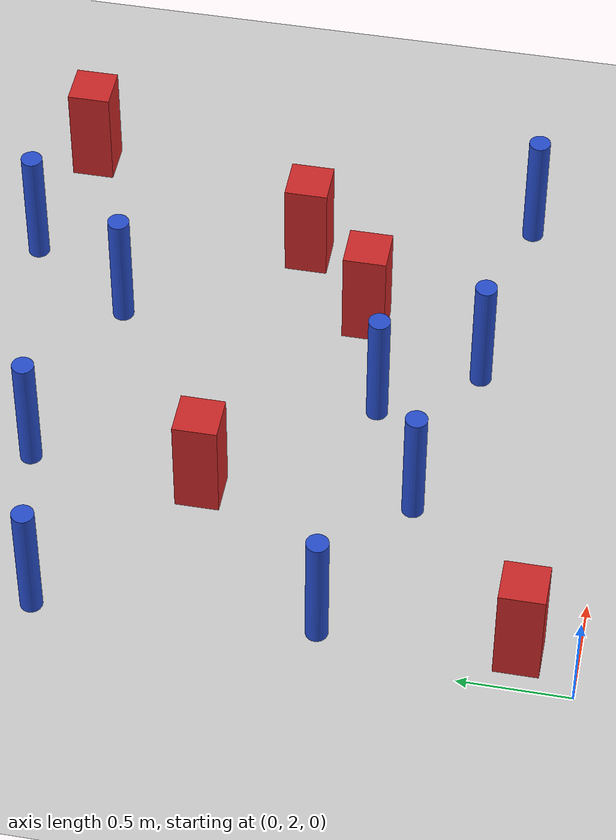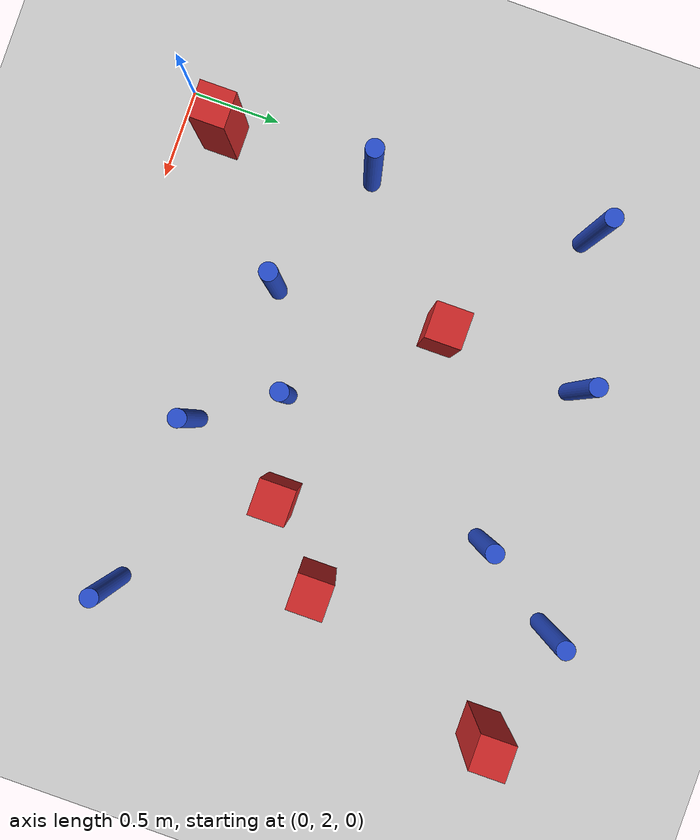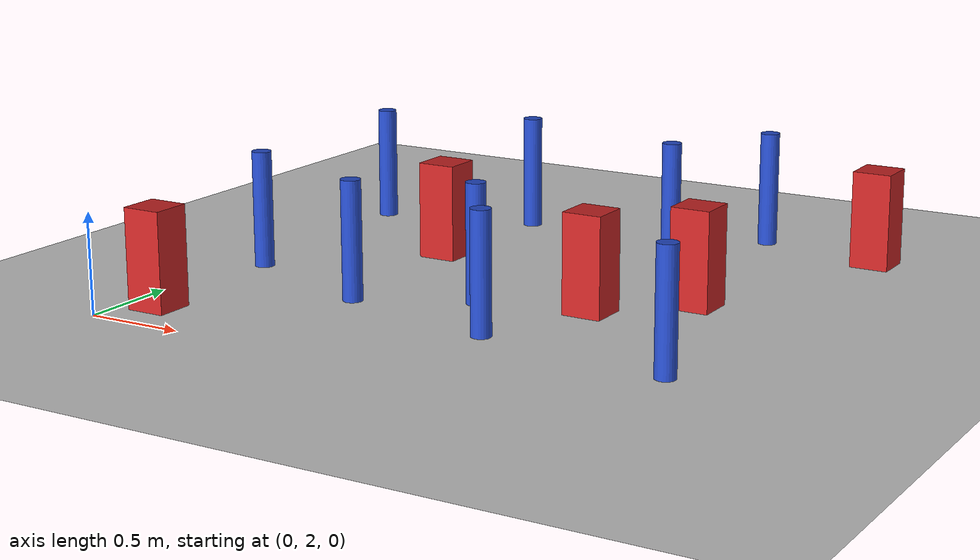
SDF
<sdf version="1.6">
 <world name="default">
  <model name="ground_plane">
   <static>1</static>
   <link name="link">
    <collision name="collision">
     <geometry><plane><normal>0 0 1</normal><size>100 100</size></plane></geometry>
     <surface><friction><ode><mu>100</mu><mu2>50</mu2></ode></friction></surface>
    </collision>
    <visual name="visual">
     <cast_shadows>0</cast_shadows>
     <geometry><plane><normal>0 0 1</normal><size>100 100</size></plane></geometry>
     <material>
      <ambient>1.0 1.0 1.0 1.0</ambient>
      <diffuse>0.8 0.8 0.8 1.0</diffuse>
      <specular>0.01 0.01 0.01 1.000000</specular>
     </material>
    </visual>
   </link>
  </model>
  <model name="pole_obstacle23">
   <static>true</static>
   <pose>1.74170460834 2.64435976566 2.88873142074e-08 -9.90536689791e-09 4.6021994899e-07 -1.20965994959e-07</pose>
   <link name="link">
    <pose>0 0 0.3 0 -0 0</pose>
    <inertial>
     <mass>1</mass>
     <inertia><ixx>0.145833</ixx><ixy>0</ixy><ixz>0</ixz><iyy>0.145833</iyy><iyz>0</iyz><izz>0.125</izz></inertia>
    </inertial>
    <collision name="collision">
     <geometry><cylinder><radius>0.05</radius><length>.6</length></cylinder></geometry>
    </collision>
    <visual name="visual">
     <geometry><cylinder><radius>0.05</radius><length>.6</length></cylinder></geometry>
     <material>
      <script><name>Gazebo/Blue</name><uri>file://media/materials/scripts/gazebo.material</uri></script>
     </material>
    </visual>
   </link>
  </model>
  <model name="square_post_obstacle59">
   <static>true</static>
   <pose>2.38153384503 3.5671006401 8.22691968438e-08 7.2212513382e-06 -7.54495500217e-07 2.29674213826e-05</pose>
   <link name="link">
    <pose>0 0 0.25 0 -0 0</pose>
    <inertial>
     <mass>100</mass>
     <inertia>
      <ixx>0.166667</ixx>
      <ixy>0</ixy>
      <ixz>0</ixz>
      <iyy>0.166667</iyy>
      <iyz>0</iyz>
      <izz>0.166667</izz>
     </inertia>
    </inertial>
    <collision name="collision"><geometry><box><size>.2 .2 .5</size></box></geometry></collision>
    <visual name="visual">
     <geometry><box><size>.2 .2 .5</size></box></geometry>
     <material>
      <script><name>Gazebo/Red</name><uri>file://media/materials/scripts/gazebo.material</uri></script>
     </material>
    </visual>
   </link>
  </model>
  <model name="square_post_obstacle67">
   <static>true</static>
   <pose>0.180488321997 2.25615456702 8.22691968438e-08 7.2212513382e-06 -7.54495500217e-07 2.29674213826e-05</pose>
   <link name="link">
    <pose>0 0 0.25 0 -0 0</pose>
    <inertial>
     <mass>100</mass>
     <inertia>
      <ixx>0.166667</ixx>
      <ixy>0</ixy>
      <ixz>0</ixz>
      <iyy>0.166667</iyy>
      <iyz>0</iyz>
      <izz>0.166667</izz>
     </inertia>
    </inertial>
    <collision name="collision"><geometry><box><size>.2 .2 .5</size></box></geometry></collision>
    <visual name="visual">
     <geometry><box><size>.2 .2 .5</size></box></geometry>
     <material>
      <script><name>Gazebo/Red</name><uri>file://media/materials/scripts/gazebo.material</uri></script>
     </material>
    </visual>
   </link>
  </model>
  <model name="pole_obstacle81">
   <static>true</static>
   <pose>0.903990162992 2.82774440364 2.88873142074e-08 -9.90536689636e-09 4.60219948994e-07 -1.20965994958e-07</pose>
   <link name="link">
    <pose>0 0 0.3 0 -0 0</pose>
    <inertial>
     <mass>1</mass>
     <inertia><ixx>0.145833</ixx><ixy>0</ixy><ixz>0</ixz><iyy>0.145833</iyy><iyz>0</iyz><izz>0.125</izz></inertia>
    </inertial>
    <collision name="collision">
     <geometry><cylinder><radius>0.05</radius><length>.6</length></cylinder></geometry>
    </collision>
    <visual name="visual">
     <geometry><cylinder><radius>0.05</radius><length>.6</length></cylinder></geometry>
     <material>
      <script><name>Gazebo/Blue</name><uri>file://media/materials/scripts/gazebo.material</uri></script>
     </material>
    </visual>
   </link>
  </model>
  <model name="pole_obstacle86">
   <static>true</static>
   <pose>2.72855945239 2.5316916202 2.88873142074e-08 -9.90536690232e-09 4.6021994898e-07 -1.20965994968e-07</pose>
   <link name="link">
    <pose>0 0 0.3 0 -0 0</pose>
    <inertial>
     <mass>1</mass>
     <inertia><ixx>0.145833</ixx><ixy>0</ixy><ixz>0</ixz><iyy>0.145833</iyy><iyz>0</iyz><izz>0.125</izz></inertia>
    </inertial>
    <collision name="collision">
     <geometry><cylinder><radius>0.05</radius><length>.6</length></cylinder></geometry>
    </collision>
    <visual name="visual">
     <geometry><cylinder><radius>0.05</radius><length>.6</length></cylinder></geometry>
     <material>
      <script><name>Gazebo/Blue</name><uri>file://media/materials/scripts/gazebo.material</uri></script>
     </material>
    </visual>
   </link>
  </model>
  <model name="square_post_obstacle87">
   <static>true</static>
   <pose>0.839269014489 3.77222593982 8.22691968438e-08 7.2212513382e-06 -7.54495500217e-07 2.29674213826e-05</pose>
   <link name="link">
    <pose>0 0 0.25 0 -0 0</pose>
    <inertial>
     <mass>100</mass>
     <inertia>
      <ixx>0.166667</ixx>
      <ixy>0</ixy>
      <ixz>0</ixz>
      <iyy>0.166667</iyy>
      <iyz>0</iyz>
      <izz>0.166667</izz>
     </inertia>
    </inertial>
    <collision name="collision"><geometry><box><size>.2 .2 .5</size></box></geometry></collision>
    <visual name="visual">
     <geometry><box><size>.2 .2 .5</size></box></geometry>
     <material>
      <script><name>Gazebo/Red</name><uri>file://media/materials/scripts/gazebo.material</uri></script>
     </material>
    </visual>
   </link>
  </model>
  <model name="pole_obstacle103">
   <static>true</static>
   <pose>1.84891390113 4.35850790932 2.88873142074e-08 -9.90536689852e-09 4.60219948989e-07 -1.2096599496e-07</pose>
   <link name="link">
    <pose>0 0 0.3 0 -0 0</pose>
    <inertial>
     <mass>1</mass>
     <inertia><ixx>0.145833</ixx><ixy>0</ixy><ixz>0</ixz><iyy>0.145833</iyy><iyz>0</iyz><izz>0.125</izz></inertia>
    </inertial>
    <collision name="collision">
     <geometry><cylinder><radius>0.05</radius><length>.6</length></cylinder></geometry>
    </collision>
    <visual name="visual">
     <geometry><cylinder><radius>0.05</radius><length>.6</length></cylinder></geometry>
     <material>
      <script><name>Gazebo/Blue</name><uri>file://media/materials/scripts/gazebo.material</uri></script>
     </material>
    </visual>
   </link>
  </model>
  <model name="pole_obstacle117">
   <static>true</static>
   <pose>1.44780550081 3.08012326872 2.88873142074e-08 -9.90536689791e-09 4.6021994899e-07 -1.20965994959e-07</pose>
   <link name="link">
    <pose>0 0 0.3 0 -0 0</pose>
    <inertial>
     <mass>1</mass>
     <inertia><ixx>0.145833</ixx><ixy>0</ixy><ixz>0</ixz><iyy>0.145833</iyy><iyz>0</iyz><izz>0.125</izz></inertia>
    </inertial>
    <collision name="collision">
     <geometry><cylinder><radius>0.05</radius><length>.6</length></cylinder></geometry>
    </collision>
    <visual name="visual">
     <geometry><cylinder><radius>0.05</radius><length>.6</length></cylinder></geometry>
     <material>
      <script><name>Gazebo/Blue</name><uri>file://media/materials/scripts/gazebo.material</uri></script>
     </material>
    </visual>
   </link>
  </model>
  <model name="pole_obstacle156">
   <static>true</static>
   <pose>0.146905843867 3.12225252958 2.88873142074e-08 -9.90536692387e-09 4.60219948929e-07 -1.20965994988e-07</pose>
   <link name="link">
    <pose>0 0 0.3 0 -0 0</pose>
    <inertial>
     <mass>1</mass>
     <inertia><ixx>0.145833</ixx><ixy>0</ixy><ixz>0</ixz><iyy>0.145833</iyy><iyz>0</iyz><izz>0.125</izz></inertia>
    </inertial>
    <collision name="collision">
     <geometry><cylinder><radius>0.05</radius><length>.6</length></cylinder></geometry>
    </collision>
    <visual name="visual">
     <geometry><cylinder><radius>0.05</radius><length>.6</length></cylinder></geometry>
     <material>
      <script><name>Gazebo/Blue</name><uri>file://media/materials/scripts/gazebo.material</uri></script>
     </material>
    </visual>
   </link>
  </model>
  <model name="pole_obstacle167">
   <static>true</static>
   <pose>0.897670462561 4.56794282939 2.88873142074e-08 -9.90536689661e-09 4.60219948993e-07 -1.20965994957e-07</pose>
   <link name="link">
    <pose>0 0 0.3 0 -0 0</pose>
    <inertial>
     <mass>1</mass>
     <inertia><ixx>0.145833</ixx><ixy>0</ixy><ixz>0</ixz><iyy>0.145833</iyy><iyz>0</iyz><izz>0.125</izz></inertia>
    </inertial>
    <collision name="collision">
     <geometry><cylinder><radius>0.05</radius><length>.6</length></cylinder></geometry>
    </collision>
    <visual name="visual">
     <geometry><cylinder><radius>0.05</radius><length>.6</length></cylinder></geometry>
     <material>
      <script><name>Gazebo/Blue</name><uri>file://media/materials/scripts/gazebo.material</uri></script>
     </material>
    </visual>
   </link>
  </model>
  <model name="square_post_obstacle169">
   <static>true</static>
   <pose>2.84172451435 4.716648273 8.22691968438e-08 7.2212513382e-06 -7.54495500217e-07 2.29674213826e-05</pose>
   <link name="link">
    <pose>0 0 0.25 0 -0 0</pose>
    <inertial>
     <mass>100</mass>
     <inertia>
      <ixx>0.166667</ixx>
      <ixy>0</ixy>
      <ixz>0</ixz>
      <iyy>0.166667</iyy>
      <iyz>0</iyz>
      <izz>0.166667</izz>
     </inertia>
    </inertial>
    <collision name="collision"><geometry><box><size>.2 .2 .5</size></box></geometry></collision>
    <visual name="visual">
     <geometry><box><size>.2 .2 .5</size></box></geometry>
     <material>
      <script><name>Gazebo/Red</name><uri>file://media/materials/scripts/gazebo.material</uri></script>
     </material>
    </visual>
   </link>
  </model>
  <model name="square_post_obstacle203">
   <static>true</static>
   <pose>1.99245065834 3.22249709164 8.22691968438e-08 7.2212513382e-06 -7.54495500217e-07 2.29674213826e-05</pose>
   <link name="link">
    <pose>0 0 0.25 0 -0 0</pose>
    <inertial>
     <mass>100</mass>
     <inertia>
      <ixx>0.166667</ixx>
      <ixy>0</ixy>
      <ixz>0</ixz>
      <iyy>0.166667</iyy>
      <iyz>0</iyz>
      <izz>0.166667</izz>
     </inertia>
    </inertial>
    <collision name="collision"><geometry><box><size>.2 .2 .5</size></box></geometry></collision>
    <visual name="visual">
     <geometry><box><size>.2 .2 .5</size></box></geometry>
     <material>
      <script><name>Gazebo/Red</name><uri>file://media/materials/scripts/gazebo.material</uri></script>
     </material>
    </visual>
   </link>
  </model>
  <model name="pole_obstacle205">
   <static>true</static>
   <pose>2.18400230949 4.85051122308 2.88873142074e-08 -9.90536689859e-09 4.60219948989e-07 -1.20965994961e-07</pose>
   <link name="link">
    <pose>0 0 0.3 0 -0 0</pose>
    <inertial>
     <mass>1</mass>
     <inertia><ixx>0.145833</ixx><ixy>0</ixy><ixz>0</ixz><iyy>0.145833</iyy><iyz>0</iyz><izz>0.125</izz></inertia>
    </inertial>
    <collision name="collision">
     <geometry><cylinder><radius>0.05</radius><length>.6</length></cylinder></geometry>
    </collision>
    <visual name="visual">
     <geometry><cylinder><radius>0.05</radius><length>.6</length></cylinder></geometry>
     <material>
      <script><name>Gazebo/Blue</name><uri>file://media/materials/scripts/gazebo.material</uri></script>
     </material>
    </visual>
   </link>
  </model>
  <model name="pole_obstacle213">
   <static>true</static>
   <pose>0.0754246066438 4.3603700717 2.88873142074e-08 -9.90536689742e-09 4.60219948992e-07 -1.2096599496e-07</pose>
   <link name="link">
    <pose>0 0 0.3 0 -0 0</pose>
    <inertial>
     <mass>1</mass>
     <inertia><ixx>0.145833</ixx><ixy>0</ixy><ixz>0</ixz><iyy>0.145833</iyy><iyz>0</iyz><izz>0.125</izz></inertia>
    </inertial>
    <collision name="collision">
     <geometry><cylinder><radius>0.05</radius><length>.6</length></cylinder></geometry>
    </collision>
    <visual name="visual">
     <geometry><cylinder><radius>0.05</radius><length>.6</length></cylinder></geometry>
     <material>
      <script><name>Gazebo/Blue</name><uri>file://media/materials/scripts/gazebo.material</uri></script>
     </material>
    </visual>
   </link>
  </model>
 </world>
</sdf>
